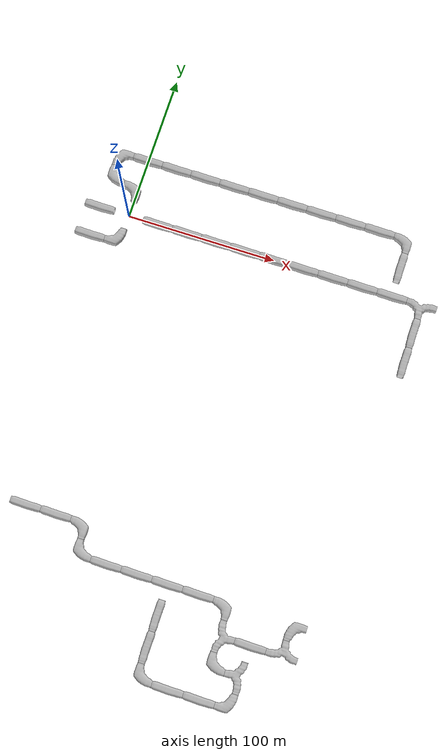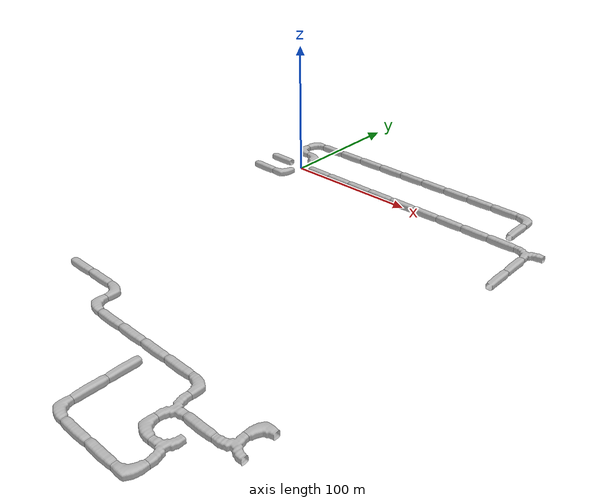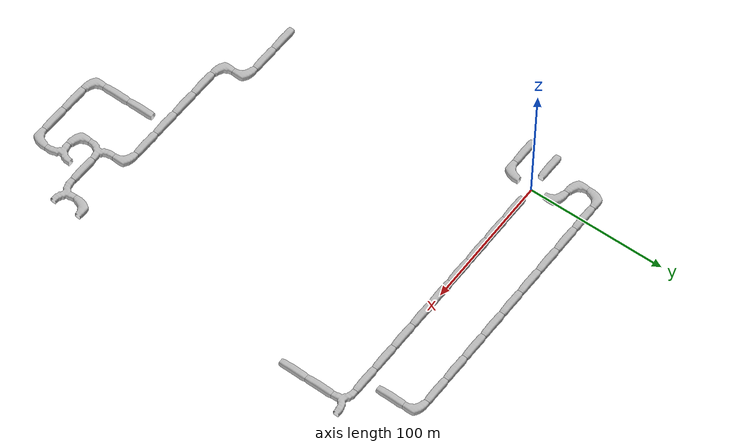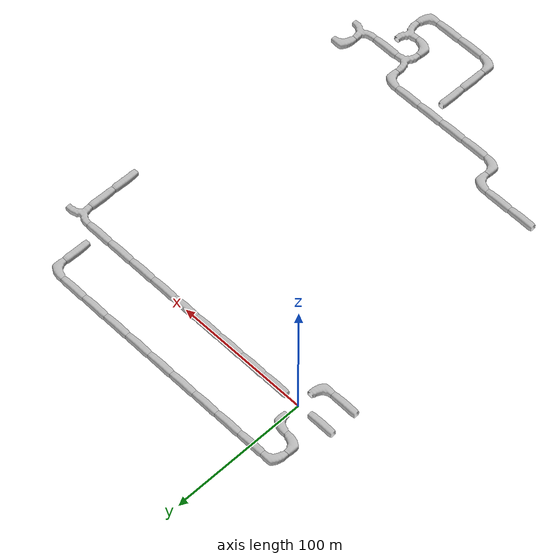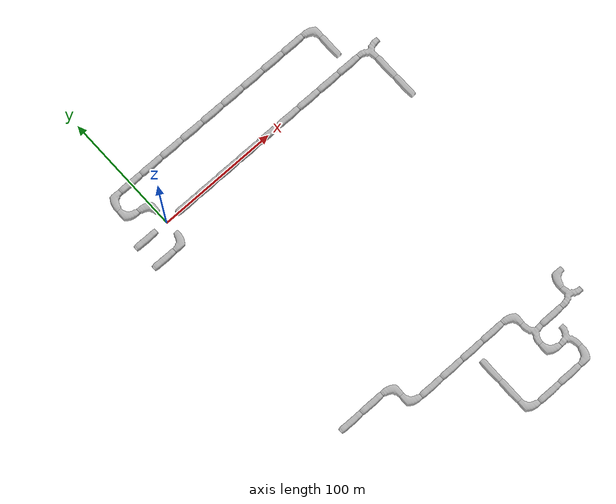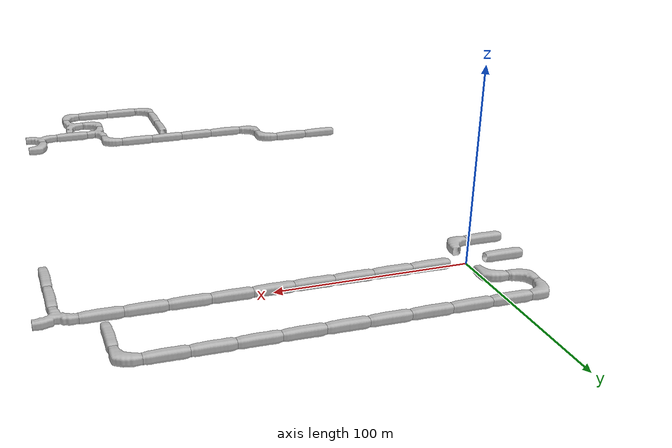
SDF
<sdf version="1.6">
 <world name="cave_4000_64">
  <include>
   <static>true</static>
   <name>cave_1_0</name>
   <pose>20 0 0 0 0 1.5707963267948966</pose>
   <uri>model://cave_straight_20m</uri>
  </include>
  <include>
   <static>true</static>
   <name>cave_2_0</name>
   <pose>40 0 0 0 0 1.5707963267948966</pose>
   <uri>model://cave_straight_20m</uri>
  </include>
  <include>
   <static>true</static>
   <name>cave_3_0</name>
   <pose>60 0 0 0 0 1.5707963267948966</pose>
   <uri>model://cave_straight_20m</uri>
  </include>
  <include>
   <static>true</static>
   <name>cave_4_0</name>
   <pose>80 0 0 0 0 1.5707963267948966</pose>
   <uri>model://cave_straight_20m</uri>
  </include>
  <include>
   <static>true</static>
   <name>cave_5_0</name>
   <pose>100 0 0 0 0 1.5707963267948966</pose>
   <uri>model://cave_straight_20m</uri>
  </include>
  <include>
   <static>true</static>
   <name>cave_6_0</name>
   <pose>120 0 0 0 0 1.5707963267948966</pose>
   <uri>model://cave_straight_20m</uri>
  </include>
  <include>
   <static>true</static>
   <name>cave_7_0</name>
   <pose>140 0 0 0 0 1.5707963267948966</pose>
   <uri>model://cave_straight_20m</uri>
  </include>
  <include>
   <static>true</static>
   <name>cave_8_0</name>
   <pose>160 0 0 0 0 1.5707963267948966</pose>
   <uri>model://cave_straight_20m</uri>
  </include>
  <include>
   <static>true</static>
   <name>cave_9_0</name>
   <pose>180 0 0 0 0 1.5707963267948966</pose>
   <uri>model://cave_straight_20m</uri>
  </include>
  <include>
   <static>true</static>
   <name>cave_10_0</name>
   <pose>200 0 0 0 0 3.141592653589793</pose>
   <uri>model://cave_3way_20m</uri>
  </include>
  <include>
   <static>true</static>
   <name>cave_10_-1</name>
   <pose>200 -20 0 0 0 0.0</pose>
   <uri>model://cave_straight_20m</uri>
  </include>
  <include>
   <static>true</static>
   <name>cave_10_-2</name>
   <pose>200 -40 0 0 0 0.0</pose>
   <uri>model://cave_straight_20m</uri>
  </include>
  <include>
   <static>true</static>
   <name>cave_9_-12</name>
   <pose>180 -240 0 0 0 0.0</pose>
   <uri>model://cave_3way_20m</uri>
  </include>
  <include>
   <static>true</static>
   <name>cave_8_-12</name>
   <pose>160 -240 0 0 0 1.5707963267948966</pose>
   <uri>model://cave_straight_20m</uri>
  </include>
  <include>
   <static>true</static>
   <name>cave_7_-12</name>
   <pose>140 -240 0 0 0 -1.5707963267948966</pose>
   <uri>model://cave_3way_20m</uri>
  </include>
  <include>
   <static>true</static>
   <name>cave_7_-13</name>
   <pose>140 -260 0 0 0 0.0</pose>
   <uri>model://cave_L_20m</uri>
  </include>
  <include>
   <static>true</static>
   <name>cave_8_-13</name>
   <pose>160 -260 0 0 0 1.5707963267948966</pose>
   <uri>model://cave_3way_20m</uri>
  </include>
  <include>
   <static>true</static>
   <name>cave_8_-14</name>
   <pose>160 -280 0 0 0 1.5707963267948966</pose>
   <uri>model://cave_L_20m</uri>
  </include>
  <include>
   <static>true</static>
   <name>cave_7_-14</name>
   <pose>140 -280 0 0 0 1.5707963267948966</pose>
   <uri>model://cave_straight_20m</uri>
  </include>
  <include>
   <static>true</static>
   <name>cave_6_-14</name>
   <pose>120 -280 0 0 0 1.5707963267948966</pose>
   <uri>model://cave_straight_20m</uri>
  </include>
  <include>
   <static>true</static>
   <name>cave_5_-14</name>
   <pose>100 -280 0 0 0 0.0</pose>
   <uri>model://cave_L_20m</uri>
  </include>
  <include>
   <static>true</static>
   <name>cave_5_-13</name>
   <pose>100 -260 0 0 0 0.0</pose>
   <uri>model://cave_straight_20m</uri>
  </include>
  <include>
   <static>true</static>
   <name>cave_5_-12</name>
   <pose>100 -240 0 0 0 0.0</pose>
   <uri>model://cave_straight_20m</uri>
  </include>
  <include>
   <static>true</static>
   <name>cave_7_-11</name>
   <pose>140 -220 0 0 0 3.141592653589793</pose>
   <uri>model://cave_L_20m</uri>
  </include>
  <include>
   <static>true</static>
   <name>cave_6_-11</name>
   <pose>120 -220 0 0 0 1.5707963267948966</pose>
   <uri>model://cave_straight_20m</uri>
  </include>
  <include>
   <static>true</static>
   <name>cave_5_-11</name>
   <pose>100 -220 0 0 0 1.5707963267948966</pose>
   <uri>model://cave_straight_20m</uri>
  </include>
  <include>
   <static>true</static>
   <name>cave_4_-11</name>
   <pose>80 -220 0 0 0 1.5707963267948966</pose>
   <uri>model://cave_straight_20m</uri>
  </include>
  <include>
   <static>true</static>
   <name>cave_3_-11</name>
   <pose>60 -220 0 0 0 1.5707963267948966</pose>
   <uri>model://cave_straight_20m</uri>
  </include>
  <include>
   <static>true</static>
   <name>cave_2_-11</name>
   <pose>40 -220 0 0 0 0.0</pose>
   <uri>model://cave_L_20m</uri>
  </include>
  <include>
   <static>true</static>
   <name>cave_2_-10</name>
   <pose>40 -200 0 0 0 3.141592653589793</pose>
   <uri>model://cave_L_20m</uri>
  </include>
  <include>
   <static>true</static>
   <name>cave_1_-10</name>
   <pose>20 -200 0 0 0 1.5707963267948966</pose>
   <uri>model://cave_straight_20m</uri>
  </include>
  <include>
   <static>true</static>
   <name>cave_0_-10</name>
   <pose>0 -200 0 0 0 1.5707963267948966</pose>
   <uri>model://cave_straight_20m</uri>
  </include>
  <include>
   <static>true</static>
   <name>cave_9_-11</name>
   <pose>180 -220 0 0 0 -1.5707963267948966</pose>
   <uri>model://cave_L_20m</uri>
  </include>
  <include>
   <static>true</static>
   <name>cave_0_-1</name>
   <pose>0 -20 0 0 0 1.5707963267948966</pose>
   <uri>model://cave_L_20m</uri>
  </include>
  <include>
   <static>true</static>
   <name>cave_-1_-1</name>
   <pose>-20 -20 0 0 0 1.5707963267948966</pose>
   <uri>model://cave_straight_20m</uri>
  </include>
  <include>
   <static>true</static>
   <name>cave_-1_0</name>
   <pose>-20 0 0 0 0 1.5707963267948966</pose>
   <uri>model://cave_straight_20m</uri>
  </include>
  <include>
   <static>true</static>
   <name>cave_0_1</name>
   <pose>0 20 0 0 0 3.141592653589793</pose>
   <uri>model://cave_L_20m</uri>
  </include>
  <include>
   <static>true</static>
   <name>cave_-1_1</name>
   <pose>-20 20 0 0 0 0.0</pose>
   <uri>model://cave_L_20m</uri>
  </include>
  <include>
   <static>true</static>
   <name>cave_-1_2</name>
   <pose>-20 40 0 0 0 -1.5707963267948966</pose>
   <uri>model://cave_L_20m</uri>
  </include>
  <include>
   <static>true</static>
   <name>cave_0_2</name>
   <pose>0 40 0 0 0 1.5707963267948966</pose>
   <uri>model://cave_straight_20m</uri>
  </include>
  <include>
   <static>true</static>
   <name>cave_1_2</name>
   <pose>20 40 0 0 0 1.5707963267948966</pose>
   <uri>model://cave_straight_20m</uri>
  </include>
  <include>
   <static>true</static>
   <name>cave_2_2</name>
   <pose>40 40 0 0 0 1.5707963267948966</pose>
   <uri>model://cave_straight_20m</uri>
  </include>
  <include>
   <static>true</static>
   <name>cave_3_2</name>
   <pose>60 40 0 0 0 1.5707963267948966</pose>
   <uri>model://cave_straight_20m</uri>
  </include>
  <include>
   <static>true</static>
   <name>cave_4_2</name>
   <pose>80 40 0 0 0 1.5707963267948966</pose>
   <uri>model://cave_straight_20m</uri>
  </include>
  <include>
   <static>true</static>
   <name>cave_5_2</name>
   <pose>100 40 0 0 0 1.5707963267948966</pose>
   <uri>model://cave_straight_20m</uri>
  </include>
  <include>
   <static>true</static>
   <name>cave_6_2</name>
   <pose>120 40 0 0 0 1.5707963267948966</pose>
   <uri>model://cave_straight_20m</uri>
  </include>
  <include>
   <static>true</static>
   <name>cave_7_2</name>
   <pose>140 40 0 0 0 1.5707963267948966</pose>
   <uri>model://cave_straight_20m</uri>
  </include>
  <include>
   <static>true</static>
   <name>cave_8_2</name>
   <pose>160 40 0 0 0 1.5707963267948966</pose>
   <uri>model://cave_straight_20m</uri>
  </include>
  <include>
   <static>true</static>
   <name>cave_9_2</name>
   <pose>180 40 0 0 0 3.141592653589793</pose>
   <uri>model://cave_L_20m</uri>
  </include>
  <include>
   <static>true</static>
   <name>cave_9_1</name>
   <pose>180 20 0 0 0 0.0</pose>
   <uri>model://cave_straight_20m</uri>
  </include>
 </world>
</sdf>
